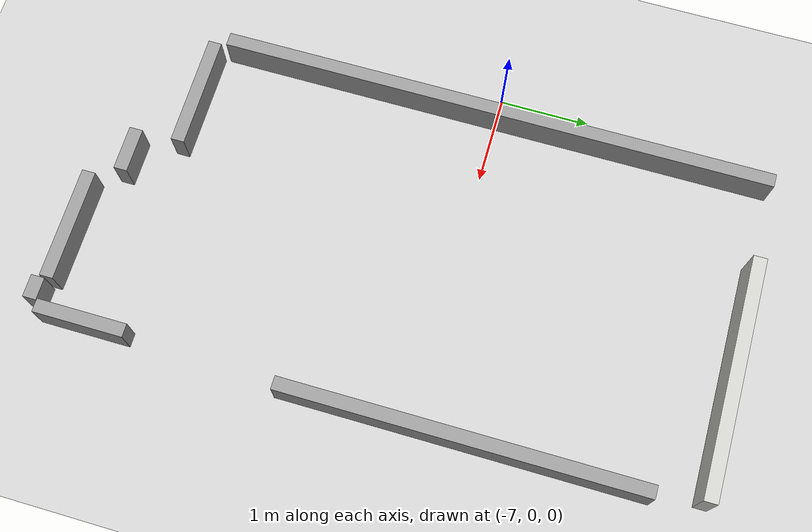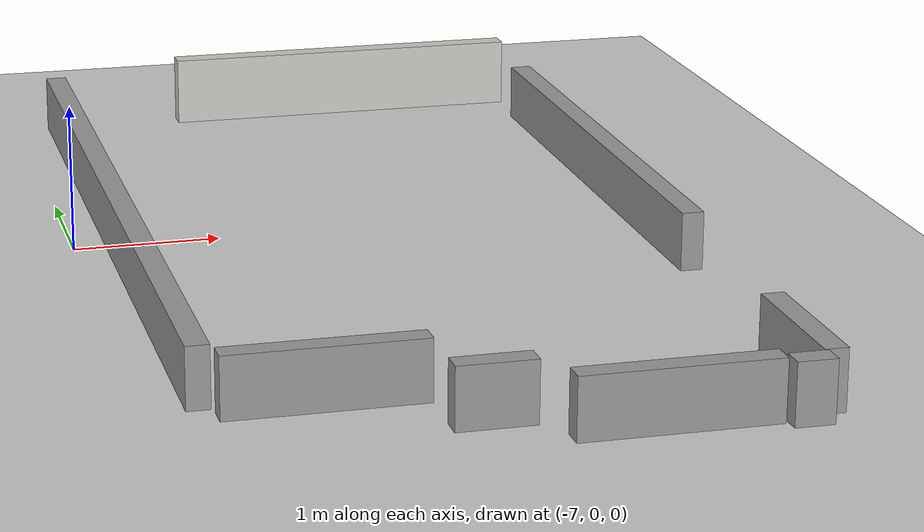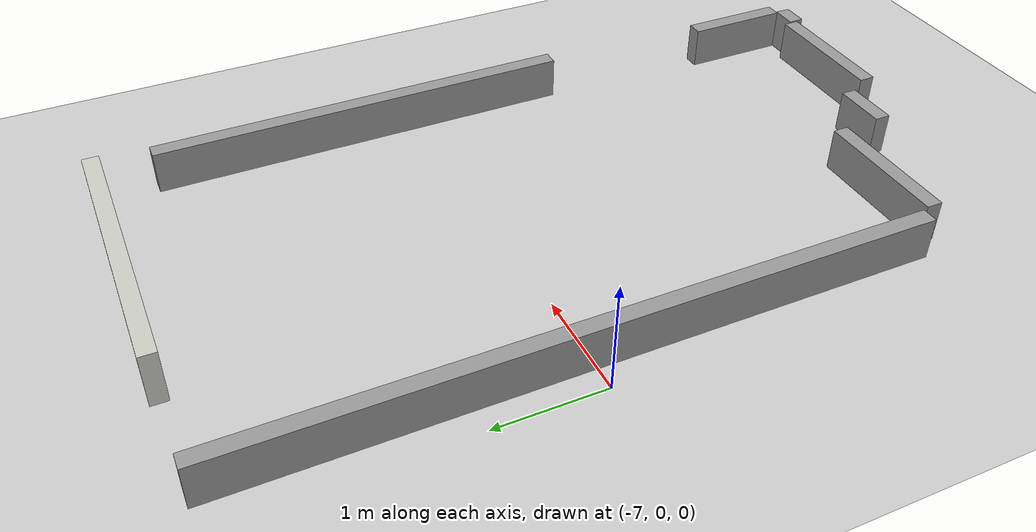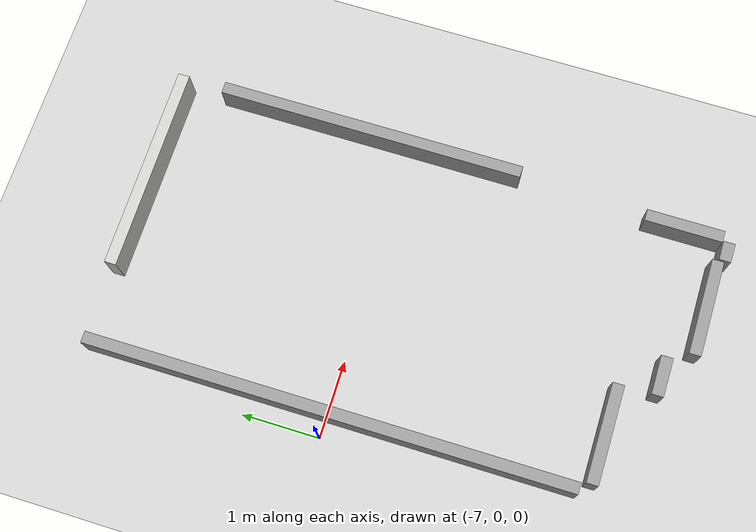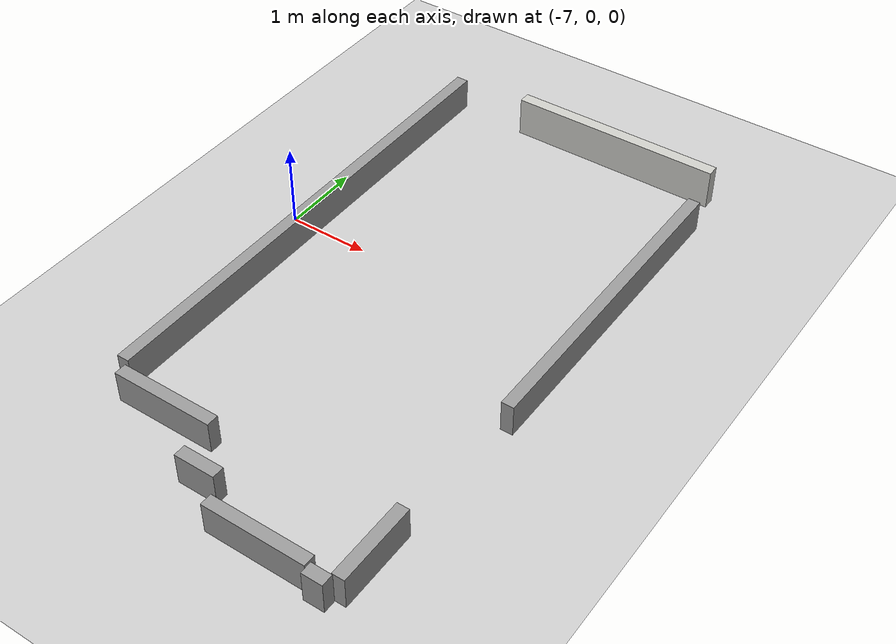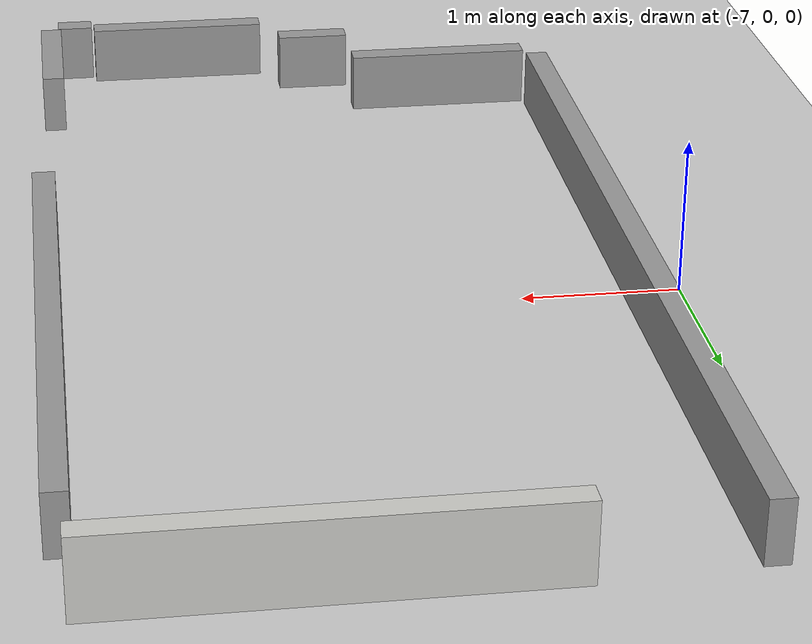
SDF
<sdf version="1.4">
 <world name="popcorn">
  <physics type="ode"><gravity>0 0 -9.8</gravity><max_step_size>0.001</max_step_size></physics>
  <scene><sky><clouds><speed>20</speed></clouds></sky></scene>
  <include><uri>model://ground_plane</uri></include>
  <include><uri>model://sun</uri></include>
  <include><name>chemlab_walls</name><uri>model://chemlab_walls</uri></include>
 </world>
</sdf>

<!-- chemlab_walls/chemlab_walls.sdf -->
<sdf version='1.4'>
  <model name='chemlab_walls'>
    <pose>-4.8955 -0.5335 0 0 -0 0</pose>
    <link name='Wall_11'>
      <collision name='Wall_11_Collision'>
        <geometry>
          <box>
            <size>2.65 0.15 0.5</size>
          </box>
        </geometry>
        <pose>0 0 0.25 0 -0 0</pose>
      </collision>
      <visual name='Wall_11_Visual'>
        <pose>0 0 0.25 0 -0 0</pose>
        <geometry>
          <box>
            <size>2.65 0.15 0.5</size>
          </box>
        </geometry>
        <material>
          <script>
            <uri>file://media/materials/scripts/gazebo.material</uri>
            <name>Gazebo/CeilingTiled</name>
          </script>
          <ambient>1 1 1 1</ambient>
        </material>
      </visual>
      <pose>0.4605 3.6205 0 0 -0 0</pose>
    </link>
    <link name='Wall_13'>
      <collision name='Wall_13_Collision'>
        <geometry>
          <box>
            <size>6.25 0.15 0.4</size>
          </box>
        </geometry>
        <pose>0 0 0.2 0 -0 0</pose>
      </collision>
      <visual name='Wall_13_Visual'>
        <pose>0 0 0.2 0 -0 0</pose>
        <geometry>
          <box>
            <size>6.25 0.15 0.4</size>
          </box>
        </geometry>
        <material>
          <script>
            <uri>file://media/materials/scripts/gazebo.material</uri>
            <name>Gazebo/Grey</name>
          </script>
          <ambient>1 1 1 1</ambient>
        </material>
      </visual>
      <pose>-1.8145 0.5095 0 0 -0 1.5708</pose>
    </link>
    <link name='Wall_15'>
      <collision name='Wall_15_Collision'>
        <geometry>
          <box>
            <size>4 0.15 0.4</size>
          </box>
        </geometry>
        <pose>0 0 0.2 0 -0 0</pose>
      </collision>
      <visual name='Wall_15_Visual'>
        <pose>0 0 0.2 0 -0 0</pose>
        <geometry>
          <box>
            <size>4 0.15 0.4</size>
          </box>
        </geometry>
        <material>
          <script>
            <uri>file://media/materials/scripts/gazebo.material</uri>
            <name>Gazebo/Grey</name>
          </script>
          <ambient>1 1 1 1</ambient>
        </material>
      </visual>
      <pose>1.8145 1.1075 0 0 0 -1.5708</pose>
    </link>
    <link name='Wall_17'>
      <collision name='Wall_17_Collision'>
        <geometry>
          <box>
            <size>1 0.15 0.4</size>
          </box>
        </geometry>
        <pose>0 0 0.2 0 -0 0</pose>
      </collision>
      <visual name='Wall_17_Visual'>
        <pose>0 0 0.2 0 -0 0</pose>
        <geometry>
          <box>
            <size>1 0.15 0.4</size>
          </box>
        </geometry>
        <material>
          <script>
            <uri>file://media/materials/scripts/gazebo.material</uri>
            <name>Gazebo/Grey</name>
          </script>
          <ambient>1 1 1 1</ambient>
        </material>
      </visual>
      <pose>1.7215 -3.0385 0 0 0 -1.5708</pose>
    </link>
    <link name='Wall_19'>
      <collision name='Wall_19_Collision'>
        <geometry>
          <box>
            <size>1.26 0.15 0.4</size>
          </box>
        </geometry>
        <pose>0 0 0.2 0 -0 0</pose>
      </collision>
      <visual name='Wall_19_Visual'>
        <pose>0 0 0.2 0 -0 0</pose>
        <geometry>
          <box>
            <size>1.26 0.15 0.4</size>
          </box>
        </geometry>
        <material>
          <script>
            <uri>file://media/materials/scripts/gazebo.material</uri>
            <name>Gazebo/Grey</name>
          </script>
          <ambient>1 1 1 1</ambient>
        </material>
      </visual>
      <pose>-1.0965 -2.7445 0 0 -0 3.14159</pose>
    </link>
    <link name='Wall_33'>
      <collision name='Wall_33_Collision'>
        <geometry>
          <box>
            <size>0.5 0.15 0.4</size>
          </box>
        </geometry>
        <pose>0 0 0.2 0 -0 0</pose>
      </collision>
      <visual name='Wall_33_Visual'>
        <pose>0 0 0.2 0 -0 0</pose>
        <geometry>
          <box>
            <size>0.5 0.15 0.4</size>
          </box>
        </geometry>
        <material>
          <script>
            <uri>file://media/materials/scripts/gazebo.material</uri>
            <name>Gazebo/Grey</name>
          </script>
          <ambient>1 1 1 1</ambient>
        </material>
      </visual>
      <pose>-0.2215 -3.2245 0 0 -0 3.14159</pose>
    </link>
    <link name='Wall_35'>
      <collision name='Wall_35_Collision'>
        <geometry>
          <box>
            <size>1.25 0.15 0.4</size>
          </box>
        </geometry>
        <pose>0 0 0.2 0 -0 0</pose>
      </collision>
      <visual name='Wall_35_Visual'>
        <pose>0 0 0.2 0 -0 0</pose>
        <geometry>
          <box>
            <size>1.25 0.15 0.4</size>
          </box>
        </geometry>
        <material>
          <script>
            <uri>file://media/materials/scripts/gazebo.material</uri>
            <name>Gazebo/Grey</name>
          </script>
          <ambient>1 1 1 1</ambient>
        </material>
      </visual>
      <pose>0.7735 -3.5405 0 0 -0 0</pose>
    </link>
    <link name='Wall_38'>
      <collision name='Wall_38_Collision'>
        <geometry>
          <box>
            <size>0.25 0.15 0.4</size>
          </box>
        </geometry>
        <pose>0 0 0.2 0 -0 0</pose>
      </collision>
      <visual name='Wall_38_Visual'>
        <pose>0 0 0.2 0 -0 0</pose>
        <geometry>
          <box>
            <size>0.25 0.15 0.4</size>
          </box>
        </geometry>
        <material>
          <script>
            <uri>file://media/materials/scripts/gazebo.material</uri>
            <name>Gazebo/Grey</name>
          </script>
          <ambient>1 1 1 1</ambient>
        </material>
      </visual>
      <pose>1.5425 -3.6205 0 0 -0 0</pose>
    </link>
    <static>1</static>
  </model>
</sdf>
